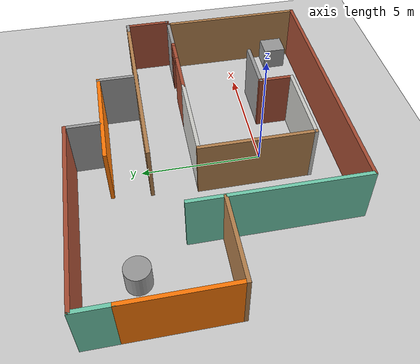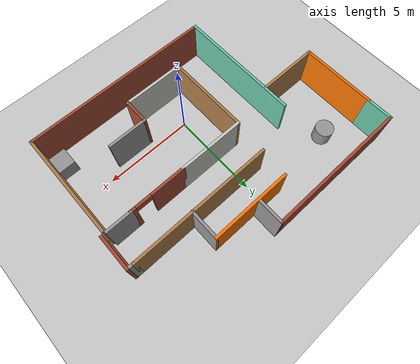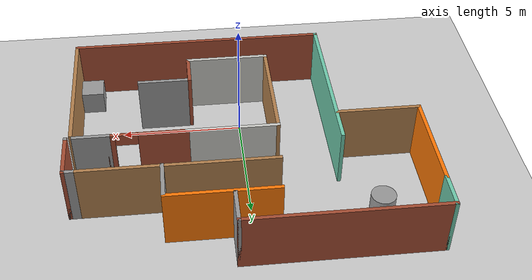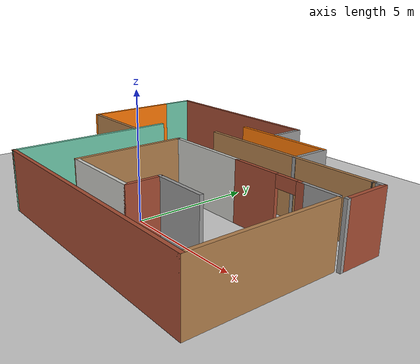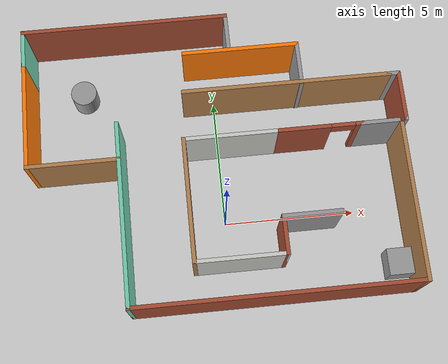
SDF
<sdf version="1.6">
 <world name="default">
  <light name="sun" type="directional">
   <pose>0 0 10 0 -0 0</pose>
   <diffuse>0.8 0.8 0.8 1</diffuse>
   <specular>0.2 0.2 0.2 1</specular>
   <attenuation>
    <range>1000</range>
    <constant>0.9</constant>
    <linear>0.01</linear>
    <quadratic>0.001</quadratic>
   </attenuation>
   <direction>-0.5 0.1 -0.9</direction>
  </light>
  <model name="ground_plane">
   <static>1</static>
   <link name="link">
    <collision name="collision">
     <geometry><plane><normal>0 0 1</normal><size>100 100</size></plane></geometry>
     <surface>
      <contact><collide_bitmask>65535</collide_bitmask></contact>
      <friction><ode><mu>100</mu><mu2>50</mu2></ode></friction>
     </surface>
    </collision>
    <visual name="visual">
     <cast_shadows>0</cast_shadows>
     <geometry><plane><normal>0 0 1</normal><size>100 100</size></plane></geometry>
     <material>
      <script><uri>file://media/materials/scripts/gazebo.material</uri><name>Gazebo/Grey</name></script>
     </material>
    </visual>
   </link>
  </model>
  <gravity>0 0 -9.8</gravity>
  <magnetic_field>6e-06 2.3e-05 -4.2e-05</magnetic_field>
  <atmosphere type="adiabatic"/>
  <physics name="default_physics" default="0" type="ode">
   <max_step_size>0.001</max_step_size>
   <real_time_factor>1</real_time_factor>
   <real_time_update_rate>1000</real_time_update_rate>
  </physics>
  <scene><ambient>0.4 0.4 0.4 1</ambient><background>0.7 0.7 0.7 1</background><shadows>1</shadows></scene>
  <spherical_coordinates>
   <surface_model>EARTH_WGS84</surface_model>
   <latitude_deg>0</latitude_deg>
   <longitude_deg>0</longitude_deg>
   <elevation>0</elevation>
   <heading_deg>0</heading_deg>
  </spherical_coordinates>
  <model name="new_map">
   <pose>-0.042781 2.25287 0 0 -0 0</pose>
   <link name="Wall_0">
    <collision name="Wall_0_Collision">
     <geometry><box><size>3.5 0.15 2.5</size></box></geometry>
     <pose>0 0 1.25 0 -0 0</pose>
    </collision>
    <visual name="Wall_0_Visual">
     <pose>0 0 1.25 0 -0 0</pose>
     <geometry><box><size>3.5 0.15 2.5</size></box></geometry>
     <material>
      <script><uri>file://media/materials/scripts/gazebo.material</uri><name>Gazebo/CeilingTiled</name></script>
      <ambient>1 1 1 1</ambient>
     </material>
     <meta><layer>0</layer></meta>
    </visual>
    <pose>0.410281 -4.05387 0 0 -0 0</pose>
   </link>
   <link name="Wall_1">
    <collision name="Wall_1_Collision">
     <geometry><box><size>1.5 0.15 2.5</size></box></geometry>
     <pose>0 0 1.25 0 -0 0</pose>
    </collision>
    <visual name="Wall_1_Visual">
     <pose>0 0 1.25 0 -0 0</pose>
     <geometry><box><size>1.5 0.15 2.5</size></box></geometry>
     <material>
      <script><uri>file://media/materials/scripts/gazebo.material</uri><name>Gazebo/Bricks</name></script>
      <ambient>1 1 1 1</ambient>
     </material>
     <meta><layer>0</layer></meta>
    </visual>
    <pose>2.08528 -3.37887 0 0 -0 1.5708</pose>
   </link>
   <link name="Wall_10">
    <collision name="Wall_10_Collision">
     <geometry><box><size>10.75 0.15 2.5</size></box></geometry>
     <pose>0 0 1.25 0 -0 0</pose>
    </collision>
    <visual name="Wall_10_Visual">
     <pose>0 0 1.25 0 -0 0</pose>
     <geometry><box><size>10.75 0.15 2.5</size></box></geometry>
     <material>
      <script><uri>file://media/materials/scripts/gazebo.material</uri><name>Gazebo/Bricks</name></script>
      <ambient>1 1 1 1</ambient>
     </material>
     <meta><layer>0</layer></meta>
    </visual>
    <pose>1.59737 -5.45895 0 0 -0 0</pose>
   </link>
   <link name="Wall_11">
    <collision name="Wall_11_Collision">
     <geometry><box><size>6 0.15 2.5</size></box></geometry>
     <pose>0 0 1.25 0 -0 0</pose>
    </collision>
    <visual name="Wall_11_Visual">
     <pose>0 0 1.25 0 -0 0</pose>
     <geometry><box><size>6 0.15 2.5</size></box></geometry>
     <material>
      <script><uri>file://media/materials/scripts/gazebo.material</uri><name>Gazebo/Wood</name></script>
      <ambient>1 1 1 1</ambient>
     </material>
     <meta><layer>0</layer></meta>
    </visual>
    <pose>6.89737 -2.53395 0 0 -0 1.5708</pose>
   </link>
   <link name="Wall_14">
    <collision name="Wall_14_Collision">
     <geometry><box><size>1.5 0.15 2.5</size></box></geometry>
     <pose>0 0 1.25 0 -0 0</pose>
    </collision>
    <visual name="Wall_14_Visual">
     <pose>0 0 1.25 0 -0 0</pose>
     <geometry><box><size>1.5 0.15 2.5</size></box></geometry>
     <material>
      <script><uri>file://media/materials/scripts/gazebo.material</uri><name>Gazebo/Grey</name></script>
      <ambient>1 1 1 1</ambient>
     </material>
     <meta><layer>0</layer></meta>
    </visual>
    <pose>6.11028 0.546128 0 0 -0 0</pose>
   </link>
   <link name="Wall_16">
    <collision name="Wall_16_Collision">
     <geometry><box><size>8 0.15 2.5</size></box></geometry>
     <pose>0 0 1.25 0 -0 0</pose>
    </collision>
    <visual name="Wall_16_Visual">
     <pose>0 0 1.25 0 -0 0</pose>
     <geometry><box><size>8 0.15 2.5</size></box></geometry>
     <material>
      <script><uri>file://media/materials/scripts/gazebo.material</uri><name>Gazebo/Wood</name></script>
      <ambient>1 1 1 1</ambient>
     </material>
     <meta><layer>0</layer></meta>
    </visual>
    <pose>2.81117 2.42937 0 0 -0 0</pose>
   </link>
   <link name="Wall_17">
    <collision name="Wall_17_Collision">
     <geometry><box><size>0.5 0.15 2.5</size></box></geometry>
     <pose>0 0 1.25 0 -0 0</pose>
    </collision>
    <visual name="Wall_17_Visual">
     <pose>0 0 1.25 0 -0 0</pose>
     <geometry><box><size>0.5 0.15 2.5</size></box></geometry>
     <material>
      <script><uri>file://media/materials/scripts/gazebo.material</uri><name>Gazebo/Grey</name></script>
      <ambient>1 1 1 1</ambient>
     </material>
     <meta><layer>0</layer></meta>
    </visual>
    <pose>6.91117 2.42937 0 0 -0 0</pose>
   </link>
   <link name="Wall_18">
    <collision name="Wall_18_Collision">
     <geometry><box><size>2 0.15 2.5</size></box></geometry>
     <pose>0 0 1.25 0 -0 0</pose>
    </collision>
    <visual name="Wall_18_Visual">
     <pose>0 0 1.25 0 -0 0</pose>
     <geometry><box><size>2 0.15 2.5</size></box></geometry>
     <material>
      <script><uri>file://media/materials/scripts/gazebo.material</uri><name>Gazebo/Bricks</name></script>
      <ambient>1 1 1 1</ambient>
     </material>
     <meta><layer>0</layer></meta>
    </visual>
    <pose>7.08617 1.50437 0 0 0 -1.5708</pose>
   </link>
   <link name="Wall_19">
    <collision name="Wall_19_Collision">
     <geometry><box><size>0.15 0.15 2.5</size></box></geometry>
     <pose>0 0 1.25 0 -0 0</pose>
    </collision>
    <visual name="Wall_19_Visual">
     <pose>0 0 1.25 0 -0 0</pose>
     <geometry><box><size>0.15 0.15 2.5</size></box></geometry>
     <material>
      <script><uri>file://media/materials/scripts/gazebo.material</uri><name>Gazebo/Grey</name></script>
      <ambient>1 1 1 1</ambient>
     </material>
     <meta><layer>0</layer></meta>
    </visual>
    <pose>7.08617 0.579369 0 0 -0 0</pose>
   </link>
   <link name="Wall_2">
    <collision name="Wall_2_Collision">
     <geometry><box><size>2.25 0.15 2.5</size></box></geometry>
     <pose>0 0 1.25 0 -0 0</pose>
    </collision>
    <visual name="Wall_2_Visual">
     <pose>0 0 1.25 0 -0 0</pose>
     <geometry><box><size>2.25 0.15 2.5</size></box></geometry>
     <material>
      <script><uri>file://media/materials/scripts/gazebo.material</uri><name>Gazebo/Grey</name></script>
      <ambient>1 1 1 1</ambient>
     </material>
     <meta><layer>0</layer></meta>
    </visual>
    <pose>3.13528 -2.70387 0 0 -0 0</pose>
   </link>
   <link name="Wall_20">
    <collision name="Wall_20_Collision">
     <geometry><box><size>0.15 0.15 2.5</size></box></geometry>
     <pose>0 0 1.25 0 -0 0</pose>
    </collision>
    <visual name="Wall_20_Visual">
     <pose>0 0 1.25 0 -0 0</pose>
     <geometry><box><size>0.15 0.15 2.5</size></box></geometry>
     <material>
      <script><uri>file://media/materials/scripts/gazebo.material</uri><name>Gazebo/Grey</name></script>
      <ambient>1 1 1 1</ambient>
     </material>
     <meta><layer>0</layer></meta>
    </visual>
    <pose>7.08617 0.579369 0 0 -0 0</pose>
   </link>
   <link name="Wall_22">
    <collision name="Wall_22_Collision">
     <geometry><box><size>4.5 0.15 2.5</size></box></geometry>
     <pose>0 0 1.25 0 -0 0</pose>
    </collision>
    <visual name="Wall_22_Visual">
     <pose>0 0 1.25 0 -0 0</pose>
     <geometry><box><size>4.5 0.15 2.5</size></box></geometry>
     <material>
      <script><uri>file://media/materials/scripts/gazebo.material</uri><name>Gazebo/Grey</name></script>
      <ambient>0.996078 0.47451 0.0196078 1</ambient>
     </material>
     <meta><layer>0</layer></meta>
    </visual>
    <pose>1.20758 4.00826 0 0 -0 0</pose>
   </link>
   <link name="Wall_23">
    <collision name="Wall_23_Collision">
     <geometry><box><size>1.75 0.15 2.5</size></box></geometry>
     <pose>0 0 1.25 0 -0 0</pose>
    </collision>
    <visual name="Wall_23_Visual">
     <pose>0 0 1.25 0 -0 0</pose>
     <geometry><box><size>1.75 0.15 2.5</size></box></geometry>
     <material>
      <script><uri>file://media/materials/scripts/gazebo.material</uri><name>Gazebo/Grey</name></script>
      <ambient>1 1 1 1</ambient>
     </material>
     <meta><layer>0</layer></meta>
    </visual>
    <pose>3.38258 3.20826 0 0 0 -1.5708</pose>
   </link>
   <link name="Wall_25">
    <collision name="Wall_25_Collision">
     <geometry><box><size>3.5 0.15 2.5</size></box></geometry>
     <pose>0 0 1.25 0 -0 0</pose>
    </collision>
    <visual name="Wall_25_Visual">
     <pose>0 0 1.25 0 -0 0</pose>
     <geometry><box><size>3.5 0.15 2.5</size></box></geometry>
     <material>
      <script><uri>file://media/materials/scripts/gazebo.material</uri><name>Gazebo/Wood</name></script>
      <ambient>1 1 1 1</ambient>
     </material>
     <meta><layer>0</layer></meta>
    </visual>
    <pose>-5.41117 0.008947 0 0 -0 3.14159</pose>
   </link>
   <link name="Wall_26">
    <collision name="Wall_26_Collision">
     <geometry><box><size>4.25 0.15 2.5</size></box></geometry>
     <pose>0 0 1.25 0 -0 0</pose>
    </collision>
    <visual name="Wall_26_Visual">
     <pose>0 0 1.25 0 -0 0</pose>
     <geometry><box><size>4.25 0.15 2.5</size></box></geometry>
     <material>
      <script><uri>file://media/materials/scripts/gazebo.material</uri><name>Gazebo/Grey</name></script>
      <ambient>0.996078 0.47451 0.0196078 1</ambient>
     </material>
     <meta><layer>0</layer></meta>
    </visual>
    <pose>-7.08617 2.05895 0 0 -0 1.5708</pose>
   </link>
   <link name="Wall_28">
    <collision name="Wall_28_Collision">
     <geometry><box><size>1.5 0.15 2.5</size></box></geometry>
     <pose>0 0 1.25 0 -0 0</pose>
    </collision>
    <visual name="Wall_28_Visual">
     <pose>0 0 1.25 0 -0 0</pose>
     <geometry><box><size>1.5 0.15 2.5</size></box></geometry>
     <material>
      <script><uri>file://media/materials/scripts/gazebo.material</uri><name>Gazebo/Grey</name></script>
      <ambient>0.435294 0.796078 0.67451 1</ambient>
     </material>
     <meta><layer>0</layer></meta>
    </visual>
    <pose>-7.08617 4.78395 0 0 -0 1.5708</pose>
   </link>
   <link name="Wall_29">
    <collision name="Wall_29_Collision">
     <geometry><box><size>8 0.15 2.5</size></box></geometry>
     <pose>0 0 1.25 0 -0 0</pose>
    </collision>
    <visual name="Wall_29_Visual">
     <pose>0 0 1.25 0 -0 0</pose>
     <geometry><box><size>8 0.15 2.5</size></box></geometry>
     <material>
      <script><uri>file://media/materials/scripts/gazebo.material</uri><name>Gazebo/Bricks</name></script>
      <ambient>1 1 1 1</ambient>
     </material>
     <meta><layer>0</layer></meta>
    </visual>
    <pose>-3.16117 5.45895 0 0 -0 0</pose>
   </link>
   <link name="Wall_30">
    <collision name="Wall_30_Collision">
     <geometry><box><size>1.5 0.15 2.5</size></box></geometry>
     <pose>0 0 1.25 0 -0 0</pose>
    </collision>
    <visual name="Wall_30_Visual">
     <pose>0 0 1.25 0 -0 0</pose>
     <geometry><box><size>1.5 0.15 2.5</size></box></geometry>
     <material>
      <script><uri>file://media/materials/scripts/gazebo.material</uri><name>Gazebo/Grey</name></script>
      <ambient>1 1 1 1</ambient>
     </material>
     <meta><layer>0</layer></meta>
    </visual>
    <pose>0.763829 4.78395 0 0 0 -1.5708</pose>
   </link>
   <link name="Wall_5">
    <collision name="Wall_5_Collision">
     <geometry><box><size>4.75 0.15 2.5</size></box></geometry>
     <pose>0 0 1.25 0 -0 0</pose>
    </collision>
    <visual name="Wall_5_Visual">
     <pose>0 0 1.25 0 -0 0</pose>
     <geometry><box><size>4.75 0.15 2.5</size></box></geometry>
     <material>
      <script><uri>file://media/materials/scripts/gazebo.material</uri><name>Gazebo/Wood</name></script>
      <ambient>1 1 1 1</ambient>
     </material>
     <meta><layer>0</layer></meta>
    </visual>
    <pose>-1.26472 -1.75387 0 0 -0 1.5708</pose>
   </link>
   <link name="Wall_6">
    <collision name="Wall_6_Collision">
     <geometry><box><size>3.75 0.15 2.5</size></box></geometry>
     <pose>0 0 1.25 0 -0 0</pose>
    </collision>
    <visual name="Wall_6_Visual">
     <pose>0 0 1.25 0 -0 0</pose>
     <geometry><box><size>3.75 0.15 2.5</size></box></geometry>
     <material>
      <script><uri>file://media/materials/scripts/gazebo.material</uri><name>Gazebo/CeilingTiled</name></script>
      <ambient>1 1 1 1</ambient>
     </material>
     <meta><layer>0</layer></meta>
    </visual>
    <pose>0.535281 0.546128 0 0 -0 0</pose>
   </link>
   <link name="Wall_7">
    <pose>3.88528 0.546128 0 0 -0 0</pose>
    <visual name="Wall_7_Visual_0">
     <pose>-0.62087 0 1.25 0 -0 0</pose>
     <geometry><box><size>2.00826 0.15 2.5</size></box></geometry>
     <material>
      <script><uri>file://media/materials/scripts/gazebo.material</uri><name>Gazebo/Bricks</name></script>
      <ambient>1 1 1 1</ambient>
     </material>
     <meta><layer>0</layer></meta>
    </visual>
    <collision name="Wall_7_Collision_0">
     <geometry><box><size>2.00826 0.15 2.5</size></box></geometry>
     <pose>-0.62087 0 1.25 0 -0 0</pose>
    </collision>
    <visual name="Wall_7_Visual_1">
     <pose>1.45413 0 1.25 0 -0 0</pose>
     <geometry><box><size>0.341741 0.15 2.5</size></box></geometry>
     <material>
      <script><uri>file://media/materials/scripts/gazebo.material</uri><name>Gazebo/Bricks</name></script>
      <ambient>1 1 1 1</ambient>
     </material>
     <meta><layer>0</layer></meta>
    </visual>
    <collision name="Wall_7_Collision_1">
     <geometry><box><size>0.341741 0.15 2.5</size></box></geometry>
     <pose>1.45413 0 1.25 0 -0 0</pose>
    </collision>
    <visual name="Wall_7_Visual_2">
     <pose>0.833259 0 2.25 0 -0 0</pose>
     <geometry><box><size>0.9 0.15 0.5</size></box></geometry>
     <material>
      <script><uri>file://media/materials/scripts/gazebo.material</uri><name>Gazebo/Bricks</name></script>
      <ambient>1 1 1 1</ambient>
     </material>
     <meta><layer>0</layer></meta>
    </visual>
    <collision name="Wall_7_Collision_2">
     <geometry><box><size>0.9 0.15 0.5</size></box></geometry>
     <pose>0.833259 0 2.25 0 -0 0</pose>
    </collision>
   </link>
   <link name="Wall_9">
    <collision name="Wall_9_Collision">
     <geometry><box><size>7 0.15 2.5</size></box></geometry>
     <pose>0 0 1.25 0 -0 0</pose>
    </collision>
    <visual name="Wall_9_Visual">
     <pose>0 0 1.25 0 -0 0</pose>
     <geometry><box><size>7 0.15 2.5</size></box></geometry>
     <material>
      <script><uri>file://media/materials/scripts/gazebo.material</uri><name>Gazebo/Grey</name></script>
      <ambient>0.435294 0.796078 0.67451 1</ambient>
     </material>
     <meta><layer>0</layer></meta>
    </visual>
    <pose>-3.70263 -2.03395 0 0 0 -1.5708</pose>
   </link>
   <static>1</static>
  </model>
  <model name="unit_cylinder">
   <pose>-5.08724 5.62141 0.5 0 -0 0</pose>
   <link name="link">
    <inertial>
     <mass>1</mass>
     <inertia><ixx>0.145833</ixx><ixy>0</ixy><ixz>0</ixz><iyy>0.145833</iyy><iyz>0</iyz><izz>0.125</izz></inertia>
    </inertial>
    <collision name="collision">
     <geometry><cylinder><radius>0.5</radius><length>1</length></cylinder></geometry>
    </collision>
    <visual name="visual">
     <geometry><cylinder><radius>0.5</radius><length>1</length></cylinder></geometry>
     <material>
      <script><name>Gazebo/Grey</name><uri>file://media/materials/scripts/gazebo.material</uri></script>
     </material>
    </visual>
   </link>
  </model>
  <model name="unit_box">
   <pose>6.34266 -2.21924 0.5 0 -0 0</pose>
   <link name="link">
    <inertial>
     <mass>1</mass>
     <inertia>
      <ixx>0.166667</ixx>
      <ixy>0</ixy>
      <ixz>0</ixz>
      <iyy>0.166667</iyy>
      <iyz>0</iyz>
      <izz>0.166667</izz>
     </inertia>
    </inertial>
    <collision name="collision"><geometry><box><size>1 1 1</size></box></geometry></collision>
    <visual name="visual">
     <geometry><box><size>1 1 1</size></box></geometry>
     <material>
      <script><name>Gazebo/Grey</name><uri>file://media/materials/scripts/gazebo.material</uri></script>
     </material>
    </visual>
   </link>
  </model>
 </world>
</sdf>
